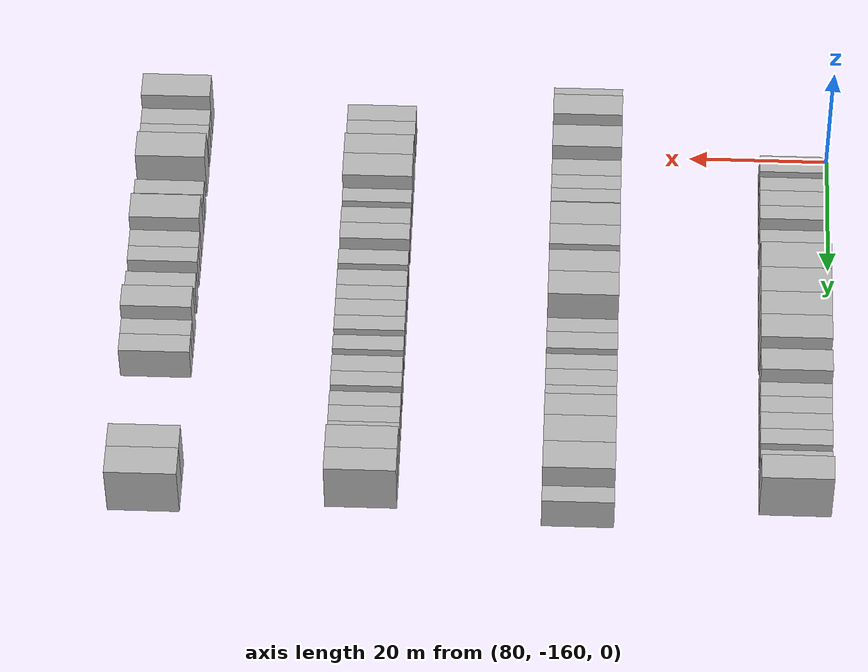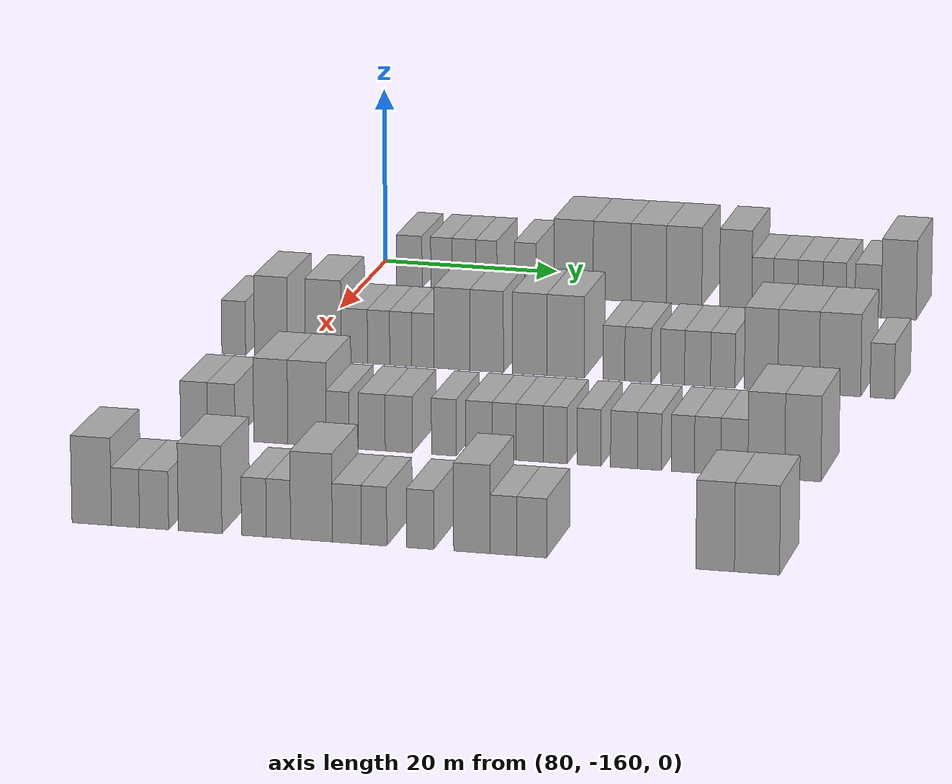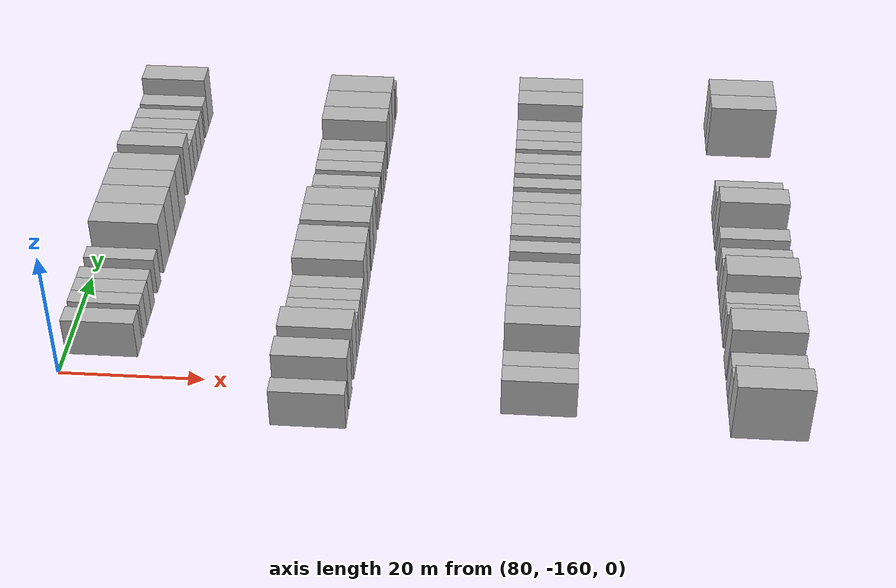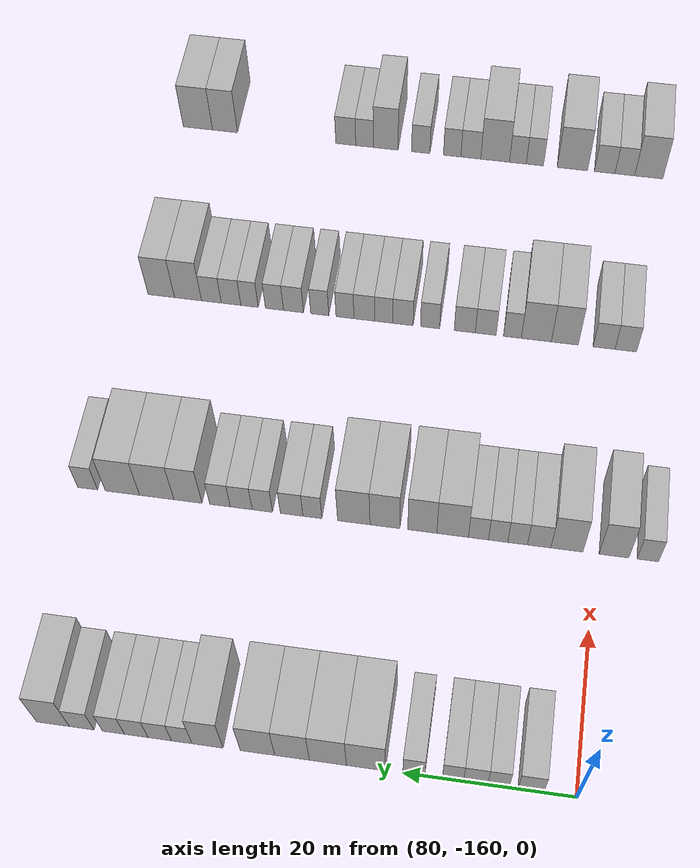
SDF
<sdf version="1.6">
 <world name="default">
  <model name="building_526">
   <static>1</static>
   <pose>85.0000 -154.6946 0 0.000000 0.000000 0.000000</pose>
   <link name="link">
    <pose>0 0 3.00 0 0 0</pose>
    <collision name="collision"><geometry><box><size>10.0000 2.9424 6.0000</size></box></geometry></collision>
    <visual name="visual">
     <cast_shadows>0</cast_shadows>
     <geometry><box><size>10.0000 2.9424 6.0000</size></box></geometry>
     <material>
      <script>
       <uri>model://HANNAS_wall/materials/scripts</uri>
       <uri>model://HANNAS_wall/materials/textures</uri>
       <name>vrc/HANNAS_wall</name>
      </script>
     </material>
    </visual>
   </link>
  </model>
  <model name="building_527">
   <static>1</static>
   <pose>85.0000 -151.0069 0 0.000000 0.000000 0.000000</pose>
   <link name="link">
    <pose>0 0 3.00 0 0 0</pose>
    <collision name="collision"><geometry><box><size>10.0000 2.4330 6.0000</size></box></geometry></collision>
    <visual name="visual">
     <cast_shadows>0</cast_shadows>
     <geometry><box><size>10.0000 2.4330 6.0000</size></box></geometry>
     <material>
      <script>
       <uri>model://HANNAS_wall/materials/scripts</uri>
       <uri>model://HANNAS_wall/materials/textures</uri>
       <name>vrc/HANNAS_wall</name>
      </script>
     </material>
    </visual>
   </link>
  </model>
  <model name="building_528">
   <static>1</static>
   <pose>85.0000 -148.4101 0 0.000000 0.000000 0.000000</pose>
   <link name="link">
    <pose>0 0 3.00 0 0 0</pose>
    <collision name="collision"><geometry><box><size>10.0000 2.7606 6.0000</size></box></geometry></collision>
    <visual name="visual">
     <cast_shadows>0</cast_shadows>
     <geometry><box><size>10.0000 2.7606 6.0000</size></box></geometry>
     <material>
      <script>
       <uri>model://HANNAS_wall/materials/scripts</uri>
       <uri>model://HANNAS_wall/materials/textures</uri>
       <name>vrc/HANNAS_wall</name>
      </script>
     </material>
    </visual>
   </link>
  </model>
  <model name="building_529">
   <static>1</static>
   <pose>85.0000 -145.8207 0 0.000000 0.000000 0.000000</pose>
   <link name="link">
    <pose>0 0 3.00 0 0 0</pose>
    <collision name="collision"><geometry><box><size>10.0000 2.4183 6.0000</size></box></geometry></collision>
    <visual name="visual">
     <cast_shadows>0</cast_shadows>
     <geometry><box><size>10.0000 2.4183 6.0000</size></box></geometry>
     <material>
      <script>
       <uri>model://HANNAS_wall/materials/scripts</uri>
       <uri>model://HANNAS_wall/materials/textures</uri>
       <name>vrc/HANNAS_wall</name>
      </script>
     </material>
    </visual>
   </link>
  </model>
  <model name="building_530">
   <static>1</static>
   <pose>85.0000 -141.3487 0 0.000000 0.000000 0.000000</pose>
   <link name="link">
    <pose>0 0 3.00 0 0 0</pose>
    <collision name="collision"><geometry><box><size>10.0000 2.5257 6.0000</size></box></geometry></collision>
    <visual name="visual">
     <cast_shadows>0</cast_shadows>
     <geometry><box><size>10.0000 2.5257 6.0000</size></box></geometry>
     <material>
      <script>
       <uri>model://HANNAS_wall/materials/scripts</uri>
       <uri>model://HANNAS_wall/materials/textures</uri>
       <name>vrc/HANNAS_wall</name>
      </script>
     </material>
    </visual>
   </link>
  </model>
  <model name="building_531">
   <static>1</static>
   <pose>85.0000 -135.8415 0 0.000000 0.000000 0.000000</pose>
   <link name="link">
    <pose>0 0 4.50 0 0 0</pose>
    <collision name="collision"><geometry><box><size>10.0000 4.4888 9.0000</size></box></geometry></collision>
    <visual name="visual">
     <cast_shadows>0</cast_shadows>
     <geometry><box><size>10.0000 4.4888 9.0000</size></box></geometry>
     <material>
      <script>
       <uri>model://HANNAS_wall/materials/scripts</uri>
       <uri>model://HANNAS_wall/materials/textures</uri>
       <name>vrc/HANNAS_wall</name>
      </script>
     </material>
    </visual>
   </link>
  </model>
  <model name="building_532">
   <static>1</static>
   <pose>85.0000 -131.4497 0 0.000000 0.000000 0.000000</pose>
   <link name="link">
    <pose>0 0 4.50 0 0 0</pose>
    <collision name="collision"><geometry><box><size>10.0000 4.2947 9.0000</size></box></geometry></collision>
    <visual name="visual">
     <cast_shadows>0</cast_shadows>
     <geometry><box><size>10.0000 4.2947 9.0000</size></box></geometry>
     <material>
      <script>
       <uri>model://HANNAS_wall/materials/scripts</uri>
       <uri>model://HANNAS_wall/materials/textures</uri>
       <name>vrc/HANNAS_wall</name>
      </script>
     </material>
    </visual>
   </link>
  </model>
  <model name="building_533">
   <static>1</static>
   <pose>85.0000 -127.2906 0 0.000000 0.000000 0.000000</pose>
   <link name="link">
    <pose>0 0 4.50 0 0 0</pose>
    <collision name="collision"><geometry><box><size>10.0000 4.0234 9.0000</size></box></geometry></collision>
    <visual name="visual">
     <cast_shadows>0</cast_shadows>
     <geometry><box><size>10.0000 4.0234 9.0000</size></box></geometry>
     <material>
      <script>
       <uri>model://HANNAS_wall/materials/scripts</uri>
       <uri>model://HANNAS_wall/materials/textures</uri>
       <name>vrc/HANNAS_wall</name>
      </script>
     </material>
    </visual>
   </link>
  </model>
  <model name="building_534">
   <static>1</static>
   <pose>85.0000 -123.2667 0 0.000000 0.000000 0.000000</pose>
   <link name="link">
    <pose>0 0 4.50 0 0 0</pose>
    <collision name="collision"><geometry><box><size>10.0000 4.0244 9.0000</size></box></geometry></collision>
    <visual name="visual">
     <cast_shadows>0</cast_shadows>
     <geometry><box><size>10.0000 4.0244 9.0000</size></box></geometry>
     <material>
      <script>
       <uri>model://HANNAS_wall/materials/scripts</uri>
       <uri>model://HANNAS_wall/materials/textures</uri>
       <name>vrc/HANNAS_wall</name>
      </script>
     </material>
    </visual>
   </link>
  </model>
  <model name="building_535">
   <static>1</static>
   <pose>85.0000 -117.4367 0 0.000000 0.000000 0.000000</pose>
   <link name="link">
    <pose>0 0 4.50 0 0 0</pose>
    <collision name="collision"><geometry><box><size>10.0000 3.6356 9.0000</size></box></geometry></collision>
    <visual name="visual">
     <cast_shadows>0</cast_shadows>
     <geometry><box><size>10.0000 3.6356 9.0000</size></box></geometry>
     <material>
      <script>
       <uri>model://HANNAS_wall/materials/scripts</uri>
       <uri>model://HANNAS_wall/materials/textures</uri>
       <name>vrc/HANNAS_wall</name>
      </script>
     </material>
    </visual>
   </link>
  </model>
  <model name="building_536">
   <static>1</static>
   <pose>85.0000 -114.4151 0 0.000000 0.000000 0.000000</pose>
   <link name="link">
    <pose>0 0 3.00 0 0 0</pose>
    <collision name="collision"><geometry><box><size>10.0000 2.4075 6.0000</size></box></geometry></collision>
    <visual name="visual">
     <cast_shadows>0</cast_shadows>
     <geometry><box><size>10.0000 2.4075 6.0000</size></box></geometry>
     <material>
      <script>
       <uri>model://HANNAS_wall/materials/scripts</uri>
       <uri>model://HANNAS_wall/materials/textures</uri>
       <name>vrc/HANNAS_wall</name>
      </script>
     </material>
    </visual>
   </link>
  </model>
  <model name="building_537">
   <static>1</static>
   <pose>85.0000 -111.8186 0 0.000000 0.000000 0.000000</pose>
   <link name="link">
    <pose>0 0 3.00 0 0 0</pose>
    <collision name="collision"><geometry><box><size>10.0000 2.7854 6.0000</size></box></geometry></collision>
    <visual name="visual">
     <cast_shadows>0</cast_shadows>
     <geometry><box><size>10.0000 2.7854 6.0000</size></box></geometry>
     <material>
      <script>
       <uri>model://HANNAS_wall/materials/scripts</uri>
       <uri>model://HANNAS_wall/materials/textures</uri>
       <name>vrc/HANNAS_wall</name>
      </script>
     </material>
    </visual>
   </link>
  </model>
  <model name="building_538">
   <static>1</static>
   <pose>85.0000 -109.0393 0 0.000000 0.000000 0.000000</pose>
   <link name="link">
    <pose>0 0 3.00 0 0 0</pose>
    <collision name="collision"><geometry><box><size>10.0000 2.7732 6.0000</size></box></geometry></collision>
    <visual name="visual">
     <cast_shadows>0</cast_shadows>
     <geometry><box><size>10.0000 2.7732 6.0000</size></box></geometry>
     <material>
      <script>
       <uri>model://HANNAS_wall/materials/scripts</uri>
       <uri>model://HANNAS_wall/materials/textures</uri>
       <name>vrc/HANNAS_wall</name>
      </script>
     </material>
    </visual>
   </link>
  </model>
  <model name="building_539">
   <static>1</static>
   <pose>85.0000 -106.3439 0 0.000000 0.000000 0.000000</pose>
   <link name="link">
    <pose>0 0 3.00 0 0 0</pose>
    <collision name="collision"><geometry><box><size>10.0000 2.6176 6.0000</size></box></geometry></collision>
    <visual name="visual">
     <cast_shadows>0</cast_shadows>
     <geometry><box><size>10.0000 2.6176 6.0000</size></box></geometry>
     <material>
      <script>
       <uri>model://HANNAS_wall/materials/scripts</uri>
       <uri>model://HANNAS_wall/materials/textures</uri>
       <name>vrc/HANNAS_wall</name>
      </script>
     </material>
    </visual>
   </link>
  </model>
  <model name="building_540">
   <static>1</static>
   <pose>85.0000 -102.5625 0 0.000000 0.000000 0.000000</pose>
   <link name="link">
    <pose>0 0 3.00 0 0 0</pose>
    <collision name="collision"><geometry><box><size>10.0000 2.9451 6.0000</size></box></geometry></collision>
    <visual name="visual">
     <cast_shadows>0</cast_shadows>
     <geometry><box><size>10.0000 2.9451 6.0000</size></box></geometry>
     <material>
      <script>
       <uri>model://HANNAS_wall/materials/scripts</uri>
       <uri>model://HANNAS_wall/materials/textures</uri>
       <name>vrc/HANNAS_wall</name>
      </script>
     </material>
    </visual>
   </link>
  </model>
  <model name="building_541">
   <static>1</static>
   <pose>85.0000 -99.1441 0 0.000000 0.000000 0.000000</pose>
   <link name="link">
    <pose>0 0 4.50 0 0 0</pose>
    <collision name="collision"><geometry><box><size>10.0000 3.8917 9.0000</size></box></geometry></collision>
    <visual name="visual">
     <cast_shadows>0</cast_shadows>
     <geometry><box><size>10.0000 3.8917 9.0000</size></box></geometry>
     <material>
      <script>
       <uri>model://HANNAS_wall/materials/scripts</uri>
       <uri>model://HANNAS_wall/materials/textures</uri>
       <name>vrc/HANNAS_wall</name>
      </script>
     </material>
    </visual>
   </link>
  </model>
  <model name="building_756">
   <static>1</static>
   <pose>115.0000 -166.5942 0 0.000000 0.000000 0.000000</pose>
   <link name="link">
    <pose>0 0 3.00 0 0 0</pose>
    <collision name="collision"><geometry><box><size>10.0000 2.6651 6.0000</size></box></geometry></collision>
    <visual name="visual">
     <cast_shadows>0</cast_shadows>
     <geometry><box><size>10.0000 2.6651 6.0000</size></box></geometry>
     <material>
      <script>
       <uri>model://HANNAS_wall/materials/scripts</uri>
       <uri>model://HANNAS_wall/materials/textures</uri>
       <name>vrc/HANNAS_wall</name>
      </script>
     </material>
    </visual>
   </link>
  </model>
  <model name="building_757">
   <static>1</static>
   <pose>115.0000 -162.4197 0 0.000000 0.000000 0.000000</pose>
   <link name="link">
    <pose>0 0 4.50 0 0 0</pose>
    <collision name="collision"><geometry><box><size>10.0000 3.6839 9.0000</size></box></geometry></collision>
    <visual name="visual">
     <cast_shadows>0</cast_shadows>
     <geometry><box><size>10.0000 3.6839 9.0000</size></box></geometry>
     <material>
      <script>
       <uri>model://HANNAS_wall/materials/scripts</uri>
       <uri>model://HANNAS_wall/materials/textures</uri>
       <name>vrc/HANNAS_wall</name>
      </script>
     </material>
    </visual>
   </link>
  </model>
  <model name="building_758">
   <static>1</static>
   <pose>115.0000 -156.5883 0 0.000000 0.000000 0.000000</pose>
   <link name="link">
    <pose>0 0 4.50 0 0 0</pose>
    <collision name="collision"><geometry><box><size>10.0000 3.9788 9.0000</size></box></geometry></collision>
    <visual name="visual">
     <cast_shadows>0</cast_shadows>
     <geometry><box><size>10.0000 3.9788 9.0000</size></box></geometry>
     <material>
      <script>
       <uri>model://HANNAS_wall/materials/scripts</uri>
       <uri>model://HANNAS_wall/materials/textures</uri>
       <name>vrc/HANNAS_wall</name>
      </script>
     </material>
    </visual>
   </link>
  </model>
  <model name="building_759">
   <static>1</static>
   <pose>115.0000 -153.1398 0 0.000000 0.000000 0.000000</pose>
   <link name="link">
    <pose>0 0 3.00 0 0 0</pose>
    <collision name="collision"><geometry><box><size>10.0000 2.9182 6.0000</size></box></geometry></collision>
    <visual name="visual">
     <cast_shadows>0</cast_shadows>
     <geometry><box><size>10.0000 2.9182 6.0000</size></box></geometry>
     <material>
      <script>
       <uri>model://HANNAS_wall/materials/scripts</uri>
       <uri>model://HANNAS_wall/materials/textures</uri>
       <name>vrc/HANNAS_wall</name>
      </script>
     </material>
    </visual>
   </link>
  </model>
  <model name="building_760">
   <static>1</static>
   <pose>115.0000 -150.4507 0 0.000000 0.000000 0.000000</pose>
   <link name="link">
    <pose>0 0 3.00 0 0 0</pose>
    <collision name="collision"><geometry><box><size>10.0000 2.4600 6.0000</size></box></geometry></collision>
    <visual name="visual">
     <cast_shadows>0</cast_shadows>
     <geometry><box><size>10.0000 2.4600 6.0000</size></box></geometry>
     <material>
      <script>
       <uri>model://HANNAS_wall/materials/scripts</uri>
       <uri>model://HANNAS_wall/materials/textures</uri>
       <name>vrc/HANNAS_wall</name>
      </script>
     </material>
    </visual>
   </link>
  </model>
  <model name="building_761">
   <static>1</static>
   <pose>115.0000 -148.0131 0 0.000000 0.000000 0.000000</pose>
   <link name="link">
    <pose>0 0 3.00 0 0 0</pose>
    <collision name="collision"><geometry><box><size>10.0000 2.4152 6.0000</size></box></geometry></collision>
    <visual name="visual">
     <cast_shadows>0</cast_shadows>
     <geometry><box><size>10.0000 2.4152 6.0000</size></box></geometry>
     <material>
      <script>
       <uri>model://HANNAS_wall/materials/scripts</uri>
       <uri>model://HANNAS_wall/materials/textures</uri>
       <name>vrc/HANNAS_wall</name>
      </script>
     </material>
    </visual>
   </link>
  </model>
  <model name="building_762">
   <static>1</static>
   <pose>115.0000 -145.5561 0 0.000000 0.000000 0.000000</pose>
   <link name="link">
    <pose>0 0 3.00 0 0 0</pose>
    <collision name="collision"><geometry><box><size>10.0000 2.4988 6.0000</size></box></geometry></collision>
    <visual name="visual">
     <cast_shadows>0</cast_shadows>
     <geometry><box><size>10.0000 2.4988 6.0000</size></box></geometry>
     <material>
      <script>
       <uri>model://HANNAS_wall/materials/scripts</uri>
       <uri>model://HANNAS_wall/materials/textures</uri>
       <name>vrc/HANNAS_wall</name>
      </script>
     </material>
    </visual>
   </link>
  </model>
  <model name="building_763">
   <static>1</static>
   <pose>115.0000 -142.3222 0 0.000000 0.000000 0.000000</pose>
   <link name="link">
    <pose>0 0 4.50 0 0 0</pose>
    <collision name="collision"><geometry><box><size>10.0000 3.9689 9.0000</size></box></geometry></collision>
    <visual name="visual">
     <cast_shadows>0</cast_shadows>
     <geometry><box><size>10.0000 3.9689 9.0000</size></box></geometry>
     <material>
      <script>
       <uri>model://HANNAS_wall/materials/scripts</uri>
       <uri>model://HANNAS_wall/materials/textures</uri>
       <name>vrc/HANNAS_wall</name>
      </script>
     </material>
    </visual>
   </link>
  </model>
  <model name="building_764">
   <static>1</static>
   <pose>115.0000 -138.5128 0 0.000000 0.000000 0.000000</pose>
   <link name="link">
    <pose>0 0 4.50 0 0 0</pose>
    <collision name="collision"><geometry><box><size>10.0000 3.6499 9.0000</size></box></geometry></collision>
    <visual name="visual">
     <cast_shadows>0</cast_shadows>
     <geometry><box><size>10.0000 3.6499 9.0000</size></box></geometry>
     <material>
      <script>
       <uri>model://HANNAS_wall/materials/scripts</uri>
       <uri>model://HANNAS_wall/materials/textures</uri>
       <name>vrc/HANNAS_wall</name>
      </script>
     </material>
    </visual>
   </link>
  </model>
  <model name="building_765">
   <static>1</static>
   <pose>115.0000 -133.7959 0 0.000000 0.000000 0.000000</pose>
   <link name="link">
    <pose>0 0 4.50 0 0 0</pose>
    <collision name="collision"><geometry><box><size>10.0000 3.7840 9.0000</size></box></geometry></collision>
    <visual name="visual">
     <cast_shadows>0</cast_shadows>
     <geometry><box><size>10.0000 3.7840 9.0000</size></box></geometry>
     <material>
      <script>
       <uri>model://HANNAS_wall/materials/scripts</uri>
       <uri>model://HANNAS_wall/materials/textures</uri>
       <name>vrc/HANNAS_wall</name>
      </script>
     </material>
    </visual>
   </link>
  </model>
  <model name="building_766">
   <static>1</static>
   <pose>115.0000 -129.8573 0 0.000000 0.000000 0.000000</pose>
   <link name="link">
    <pose>0 0 4.50 0 0 0</pose>
    <collision name="collision"><geometry><box><size>10.0000 4.0932 9.0000</size></box></geometry></collision>
    <visual name="visual">
     <cast_shadows>0</cast_shadows>
     <geometry><box><size>10.0000 4.0932 9.0000</size></box></geometry>
     <material>
      <script>
       <uri>model://HANNAS_wall/materials/scripts</uri>
       <uri>model://HANNAS_wall/materials/textures</uri>
       <name>vrc/HANNAS_wall</name>
      </script>
     </material>
    </visual>
   </link>
  </model>
  <model name="building_767">
   <static>1</static>
   <pose>115.0000 -124.6095 0 0.000000 0.000000 0.000000</pose>
   <link name="link">
    <pose>0 0 3.00 0 0 0</pose>
    <collision name="collision"><geometry><box><size>10.0000 2.4023 6.0000</size></box></geometry></collision>
    <visual name="visual">
     <cast_shadows>0</cast_shadows>
     <geometry><box><size>10.0000 2.4023 6.0000</size></box></geometry>
     <material>
      <script>
       <uri>model://HANNAS_wall/materials/scripts</uri>
       <uri>model://HANNAS_wall/materials/textures</uri>
       <name>vrc/HANNAS_wall</name>
      </script>
     </material>
    </visual>
   </link>
  </model>
  <model name="building_768">
   <static>1</static>
   <pose>115.0000 -121.9651 0 0.000000 0.000000 0.000000</pose>
   <link name="link">
    <pose>0 0 3.00 0 0 0</pose>
    <collision name="collision"><geometry><box><size>10.0000 2.8866 6.0000</size></box></geometry></collision>
    <visual name="visual">
     <cast_shadows>0</cast_shadows>
     <geometry><box><size>10.0000 2.8866 6.0000</size></box></geometry>
     <material>
      <script>
       <uri>model://HANNAS_wall/materials/scripts</uri>
       <uri>model://HANNAS_wall/materials/textures</uri>
       <name>vrc/HANNAS_wall</name>
      </script>
     </material>
    </visual>
   </link>
  </model>
  <model name="building_769">
   <static>1</static>
   <pose>115.0000 -118.2222 0 0.000000 0.000000 0.000000</pose>
   <link name="link">
    <pose>0 0 3.00 0 0 0</pose>
    <collision name="collision"><geometry><box><size>10.0000 2.5993 6.0000</size></box></geometry></collision>
    <visual name="visual">
     <cast_shadows>0</cast_shadows>
     <geometry><box><size>10.0000 2.5993 6.0000</size></box></geometry>
     <material>
      <script>
       <uri>model://HANNAS_wall/materials/scripts</uri>
       <uri>model://HANNAS_wall/materials/textures</uri>
       <name>vrc/HANNAS_wall</name>
      </script>
     </material>
    </visual>
   </link>
  </model>
  <model name="building_770">
   <static>1</static>
   <pose>115.0000 -115.5178 0 0.000000 0.000000 0.000000</pose>
   <link name="link">
    <pose>0 0 3.00 0 0 0</pose>
    <collision name="collision"><geometry><box><size>10.0000 2.8096 6.0000</size></box></geometry></collision>
    <visual name="visual">
     <cast_shadows>0</cast_shadows>
     <geometry><box><size>10.0000 2.8096 6.0000</size></box></geometry>
     <material>
      <script>
       <uri>model://HANNAS_wall/materials/scripts</uri>
       <uri>model://HANNAS_wall/materials/textures</uri>
       <name>vrc/HANNAS_wall</name>
      </script>
     </material>
    </visual>
   </link>
  </model>
  <model name="building_771">
   <static>1</static>
   <pose>115.0000 -112.7918 0 0.000000 0.000000 0.000000</pose>
   <link name="link">
    <pose>0 0 3.00 0 0 0</pose>
    <collision name="collision"><geometry><box><size>10.0000 2.6424 6.0000</size></box></geometry></collision>
    <visual name="visual">
     <cast_shadows>0</cast_shadows>
     <geometry><box><size>10.0000 2.6424 6.0000</size></box></geometry>
     <material>
      <script>
       <uri>model://HANNAS_wall/materials/scripts</uri>
       <uri>model://HANNAS_wall/materials/textures</uri>
       <name>vrc/HANNAS_wall</name>
      </script>
     </material>
    </visual>
   </link>
  </model>
  <model name="building_772">
   <static>1</static>
   <pose>115.0000 -108.6575 0 0.000000 0.000000 0.000000</pose>
   <link name="link">
    <pose>0 0 4.50 0 0 0</pose>
    <collision name="collision"><geometry><box><size>10.0000 3.6263 9.0000</size></box></geometry></collision>
    <visual name="visual">
     <cast_shadows>0</cast_shadows>
     <geometry><box><size>10.0000 3.6263 9.0000</size></box></geometry>
     <material>
      <script>
       <uri>model://HANNAS_wall/materials/scripts</uri>
       <uri>model://HANNAS_wall/materials/textures</uri>
       <name>vrc/HANNAS_wall</name>
      </script>
     </material>
    </visual>
   </link>
  </model>
  <model name="building_773">
   <static>1</static>
   <pose>115.0000 -104.6255 0 0.000000 0.000000 0.000000</pose>
   <link name="link">
    <pose>0 0 4.50 0 0 0</pose>
    <collision name="collision"><geometry><box><size>10.0000 4.4377 9.0000</size></box></geometry></collision>
    <visual name="visual">
     <cast_shadows>0</cast_shadows>
     <geometry><box><size>10.0000 4.4377 9.0000</size></box></geometry>
     <material>
      <script>
       <uri>model://HANNAS_wall/materials/scripts</uri>
       <uri>model://HANNAS_wall/materials/textures</uri>
       <name>vrc/HANNAS_wall</name>
      </script>
     </material>
    </visual>
   </link>
  </model>
  <model name="building_774">
   <static>1</static>
   <pose>115.0000 -100.1781 0 0.000000 0.000000 0.000000</pose>
   <link name="link">
    <pose>0 0 4.50 0 0 0</pose>
    <collision name="collision"><geometry><box><size>10.0000 4.4570 9.0000</size></box></geometry></collision>
    <visual name="visual">
     <cast_shadows>0</cast_shadows>
     <geometry><box><size>10.0000 4.4570 9.0000</size></box></geometry>
     <material>
      <script>
       <uri>model://HANNAS_wall/materials/scripts</uri>
       <uri>model://HANNAS_wall/materials/textures</uri>
       <name>vrc/HANNAS_wall</name>
      </script>
     </material>
    </visual>
   </link>
  </model>
  <model name="building_775">
   <static>1</static>
   <pose>115.0000 -95.6564 0 0.000000 0.000000 0.000000</pose>
   <link name="link">
    <pose>0 0 3.00 0 0 0</pose>
    <collision name="collision"><geometry><box><size>10.0000 2.5863 6.0000</size></box></geometry></collision>
    <visual name="visual">
     <cast_shadows>0</cast_shadows>
     <geometry><box><size>10.0000 2.5863 6.0000</size></box></geometry>
     <material>
      <script>
       <uri>model://HANNAS_wall/materials/scripts</uri>
       <uri>model://HANNAS_wall/materials/textures</uri>
       <name>vrc/HANNAS_wall</name>
      </script>
     </material>
    </visual>
   </link>
  </model>
  <model name="building_989">
   <static>1</static>
   <pose>145.0000 -162.3077 0 0.000000 0.000000 0.000000</pose>
   <link name="link">
    <pose>0 0 3.00 0 0 0</pose>
    <collision name="collision"><geometry><box><size>10.0000 2.8943 6.0000</size></box></geometry></collision>
    <visual name="visual">
     <cast_shadows>0</cast_shadows>
     <geometry><box><size>10.0000 2.8943 6.0000</size></box></geometry>
     <material>
      <script>
       <uri>model://HANNAS_wall/materials/scripts</uri>
       <uri>model://HANNAS_wall/materials/textures</uri>
       <name>vrc/HANNAS_wall</name>
      </script>
     </material>
    </visual>
   </link>
  </model>
  <model name="building_990">
   <static>1</static>
   <pose>145.0000 -159.3854 0 0.000000 0.000000 0.000000</pose>
   <link name="link">
    <pose>0 0 3.00 0 0 0</pose>
    <collision name="collision"><geometry><box><size>10.0000 2.9504 6.0000</size></box></geometry></collision>
    <visual name="visual">
     <cast_shadows>0</cast_shadows>
     <geometry><box><size>10.0000 2.9504 6.0000</size></box></geometry>
     <material>
      <script>
       <uri>model://HANNAS_wall/materials/scripts</uri>
       <uri>model://HANNAS_wall/materials/textures</uri>
       <name>vrc/HANNAS_wall</name>
      </script>
     </material>
    </visual>
   </link>
  </model>
  <model name="building_991">
   <static>1</static>
   <pose>145.0000 -154.0916 0 0.000000 0.000000 0.000000</pose>
   <link name="link">
    <pose>0 0 4.50 0 0 0</pose>
    <collision name="collision"><geometry><box><size>10.0000 3.6371 9.0000</size></box></geometry></collision>
    <visual name="visual">
     <cast_shadows>0</cast_shadows>
     <geometry><box><size>10.0000 3.6371 9.0000</size></box></geometry>
     <material>
      <script>
       <uri>model://HANNAS_wall/materials/scripts</uri>
       <uri>model://HANNAS_wall/materials/textures</uri>
       <name>vrc/HANNAS_wall</name>
      </script>
     </material>
    </visual>
   </link>
  </model>
  <model name="building_992">
   <static>1</static>
   <pose>145.0000 -150.2352 0 0.000000 0.000000 0.000000</pose>
   <link name="link">
    <pose>0 0 4.50 0 0 0</pose>
    <collision name="collision"><geometry><box><size>10.0000 4.0757 9.0000</size></box></geometry></collision>
    <visual name="visual">
     <cast_shadows>0</cast_shadows>
     <geometry><box><size>10.0000 4.0757 9.0000</size></box></geometry>
     <material>
      <script>
       <uri>model://HANNAS_wall/materials/scripts</uri>
       <uri>model://HANNAS_wall/materials/textures</uri>
       <name>vrc/HANNAS_wall</name>
      </script>
     </material>
    </visual>
   </link>
  </model>
  <model name="building_993">
   <static>1</static>
   <pose>145.0000 -146.9902 0 0.000000 0.000000 0.000000</pose>
   <link name="link">
    <pose>0 0 3.00 0 0 0</pose>
    <collision name="collision"><geometry><box><size>10.0000 2.4142 6.0000</size></box></geometry></collision>
    <visual name="visual">
     <cast_shadows>0</cast_shadows>
     <geometry><box><size>10.0000 2.4142 6.0000</size></box></geometry>
     <material>
      <script>
       <uri>model://HANNAS_wall/materials/scripts</uri>
       <uri>model://HANNAS_wall/materials/textures</uri>
       <name>vrc/HANNAS_wall</name>
      </script>
     </material>
    </visual>
   </link>
  </model>
  <model name="building_994">
   <static>1</static>
   <pose>145.0000 -143.3647 0 0.000000 0.000000 0.000000</pose>
   <link name="link">
    <pose>0 0 3.00 0 0 0</pose>
    <collision name="collision"><geometry><box><size>10.0000 2.8368 6.0000</size></box></geometry></collision>
    <visual name="visual">
     <cast_shadows>0</cast_shadows>
     <geometry><box><size>10.0000 2.8368 6.0000</size></box></geometry>
     <material>
      <script>
       <uri>model://HANNAS_wall/materials/scripts</uri>
       <uri>model://HANNAS_wall/materials/textures</uri>
       <name>vrc/HANNAS_wall</name>
      </script>
     </material>
    </visual>
   </link>
  </model>
  <model name="building_995">
   <static>1</static>
   <pose>145.0000 -140.5082 0 0.000000 0.000000 0.000000</pose>
   <link name="link">
    <pose>0 0 3.00 0 0 0</pose>
    <collision name="collision"><geometry><box><size>10.0000 2.8763 6.0000</size></box></geometry></collision>
    <visual name="visual">
     <cast_shadows>0</cast_shadows>
     <geometry><box><size>10.0000 2.8763 6.0000</size></box></geometry>
     <material>
      <script>
       <uri>model://HANNAS_wall/materials/scripts</uri>
       <uri>model://HANNAS_wall/materials/textures</uri>
       <name>vrc/HANNAS_wall</name>
      </script>
     </material>
    </visual>
   </link>
  </model>
  <model name="building_996">
   <static>1</static>
   <pose>145.0000 -135.7601 0 0.000000 0.000000 0.000000</pose>
   <link name="link">
    <pose>0 0 3.00 0 0 0</pose>
    <collision name="collision"><geometry><box><size>10.0000 2.6199 6.0000</size></box></geometry></collision>
    <visual name="visual">
     <cast_shadows>0</cast_shadows>
     <geometry><box><size>10.0000 2.6199 6.0000</size></box></geometry>
     <material>
      <script>
       <uri>model://HANNAS_wall/materials/scripts</uri>
       <uri>model://HANNAS_wall/materials/textures</uri>
       <name>vrc/HANNAS_wall</name>
      </script>
     </material>
    </visual>
   </link>
  </model>
  <model name="building_997">
   <static>1</static>
   <pose>145.0000 -132.0538 0 0.000000 0.000000 0.000000</pose>
   <link name="link">
    <pose>0 0 3.00 0 0 0</pose>
    <collision name="collision"><geometry><box><size>10.0000 2.7929 6.0000</size></box></geometry></collision>
    <visual name="visual">
     <cast_shadows>0</cast_shadows>
     <geometry><box><size>10.0000 2.7929 6.0000</size></box></geometry>
     <material>
      <script>
       <uri>model://HANNAS_wall/materials/scripts</uri>
       <uri>model://HANNAS_wall/materials/textures</uri>
       <name>vrc/HANNAS_wall</name>
      </script>
     </material>
    </visual>
   </link>
  </model>
  <model name="building_998">
   <static>1</static>
   <pose>145.0000 -129.4164 0 0.000000 0.000000 0.000000</pose>
   <link name="link">
    <pose>0 0 3.00 0 0 0</pose>
    <collision name="collision"><geometry><box><size>10.0000 2.4818 6.0000</size></box></geometry></collision>
    <visual name="visual">
     <cast_shadows>0</cast_shadows>
     <geometry><box><size>10.0000 2.4818 6.0000</size></box></geometry>
     <material>
      <script>
       <uri>model://HANNAS_wall/materials/scripts</uri>
       <uri>model://HANNAS_wall/materials/textures</uri>
       <name>vrc/HANNAS_wall</name>
      </script>
     </material>
    </visual>
   </link>
  </model>
  <model name="building_999">
   <static>1</static>
   <pose>145.0000 -126.7420 0 0.000000 0.000000 0.000000</pose>
   <link name="link">
    <pose>0 0 3.00 0 0 0</pose>
    <collision name="collision"><geometry><box><size>10.0000 2.8670 6.0000</size></box></geometry></collision>
    <visual name="visual">
     <cast_shadows>0</cast_shadows>
     <geometry><box><size>10.0000 2.8670 6.0000</size></box></geometry>
     <material>
      <script>
       <uri>model://HANNAS_wall/materials/scripts</uri>
       <uri>model://HANNAS_wall/materials/textures</uri>
       <name>vrc/HANNAS_wall</name>
      </script>
     </material>
    </visual>
   </link>
  </model>
  <model name="building_1000">
   <static>1</static>
   <pose>145.0000 -124.0667 0 0.000000 0.000000 0.000000</pose>
   <link name="link">
    <pose>0 0 3.00 0 0 0</pose>
    <collision name="collision"><geometry><box><size>10.0000 2.4837 6.0000</size></box></geometry></collision>
    <visual name="visual">
     <cast_shadows>0</cast_shadows>
     <geometry><box><size>10.0000 2.4837 6.0000</size></box></geometry>
     <material>
      <script>
       <uri>model://HANNAS_wall/materials/scripts</uri>
       <uri>model://HANNAS_wall/materials/textures</uri>
       <name>vrc/HANNAS_wall</name>
      </script>
     </material>
    </visual>
   </link>
  </model>
  <model name="building_1001">
   <static>1</static>
   <pose>145.0000 -120.5698 0 0.000000 0.000000 0.000000</pose>
   <link name="link">
    <pose>0 0 3.00 0 0 0</pose>
    <collision name="collision"><geometry><box><size>10.0000 2.5101 6.0000</size></box></geometry></collision>
    <visual name="visual">
     <cast_shadows>0</cast_shadows>
     <geometry><box><size>10.0000 2.5101 6.0000</size></box></geometry>
     <material>
      <script>
       <uri>model://HANNAS_wall/materials/scripts</uri>
       <uri>model://HANNAS_wall/materials/textures</uri>
       <name>vrc/HANNAS_wall</name>
      </script>
     </material>
    </visual>
   </link>
  </model>
  <model name="building_1002">
   <static>1</static>
   <pose>145.0000 -116.9222 0 0.000000 0.000000 0.000000</pose>
   <link name="link">
    <pose>0 0 3.00 0 0 0</pose>
    <collision name="collision"><geometry><box><size>10.0000 2.7850 6.0000</size></box></geometry></collision>
    <visual name="visual">
     <cast_shadows>0</cast_shadows>
     <geometry><box><size>10.0000 2.7850 6.0000</size></box></geometry>
     <material>
      <script>
       <uri>model://HANNAS_wall/materials/scripts</uri>
       <uri>model://HANNAS_wall/materials/textures</uri>
       <name>vrc/HANNAS_wall</name>
      </script>
     </material>
    </visual>
   </link>
  </model>
  <model name="building_1003">
   <static>1</static>
   <pose>145.0000 -114.2777 0 0.000000 0.000000 0.000000</pose>
   <link name="link">
    <pose>0 0 3.00 0 0 0</pose>
    <collision name="collision"><geometry><box><size>10.0000 2.5041 6.0000</size></box></geometry></collision>
    <visual name="visual">
     <cast_shadows>0</cast_shadows>
     <geometry><box><size>10.0000 2.5041 6.0000</size></box></geometry>
     <material>
      <script>
       <uri>model://HANNAS_wall/materials/scripts</uri>
       <uri>model://HANNAS_wall/materials/textures</uri>
       <name>vrc/HANNAS_wall</name>
      </script>
     </material>
    </visual>
   </link>
  </model>
  <model name="building_1004">
   <static>1</static>
   <pose>145.0000 -110.8161 0 0.000000 0.000000 0.000000</pose>
   <link name="link">
    <pose>0 0 3.00 0 0 0</pose>
    <collision name="collision"><geometry><box><size>10.0000 2.4190 6.0000</size></box></geometry></collision>
    <visual name="visual">
     <cast_shadows>0</cast_shadows>
     <geometry><box><size>10.0000 2.4190 6.0000</size></box></geometry>
     <material>
      <script>
       <uri>model://HANNAS_wall/materials/scripts</uri>
       <uri>model://HANNAS_wall/materials/textures</uri>
       <name>vrc/HANNAS_wall</name>
      </script>
     </material>
    </visual>
   </link>
  </model>
  <model name="building_1005">
   <static>1</static>
   <pose>145.0000 -108.2437 0 0.000000 0.000000 0.000000</pose>
   <link name="link">
    <pose>0 0 3.00 0 0 0</pose>
    <collision name="collision"><geometry><box><size>10.0000 2.7259 6.0000</size></box></geometry></collision>
    <visual name="visual">
     <cast_shadows>0</cast_shadows>
     <geometry><box><size>10.0000 2.7259 6.0000</size></box></geometry>
     <material>
      <script>
       <uri>model://HANNAS_wall/materials/scripts</uri>
       <uri>model://HANNAS_wall/materials/textures</uri>
       <name>vrc/HANNAS_wall</name>
      </script>
     </material>
    </visual>
   </link>
  </model>
  <model name="building_1006">
   <static>1</static>
   <pose>145.0000 -105.4901 0 0.000000 0.000000 0.000000</pose>
   <link name="link">
    <pose>0 0 3.00 0 0 0</pose>
    <collision name="collision"><geometry><box><size>10.0000 2.7812 6.0000</size></box></geometry></collision>
    <visual name="visual">
     <cast_shadows>0</cast_shadows>
     <geometry><box><size>10.0000 2.7812 6.0000</size></box></geometry>
     <material>
      <script>
       <uri>model://HANNAS_wall/materials/scripts</uri>
       <uri>model://HANNAS_wall/materials/textures</uri>
       <name>vrc/HANNAS_wall</name>
      </script>
     </material>
    </visual>
   </link>
  </model>
  <model name="building_1007">
   <static>1</static>
   <pose>145.0000 -102.2036 0 0.000000 0.000000 0.000000</pose>
   <link name="link">
    <pose>0 0 4.50 0 0 0</pose>
    <collision name="collision"><geometry><box><size>10.0000 3.7918 9.0000</size></box></geometry></collision>
    <visual name="visual">
     <cast_shadows>0</cast_shadows>
     <geometry><box><size>10.0000 3.7918 9.0000</size></box></geometry>
     <material>
      <script>
       <uri>model://HANNAS_wall/materials/scripts</uri>
       <uri>model://HANNAS_wall/materials/textures</uri>
       <name>vrc/HANNAS_wall</name>
      </script>
     </material>
    </visual>
   </link>
  </model>
  <model name="building_1008">
   <static>1</static>
   <pose>145.0000 -98.4480 0 0.000000 0.000000 0.000000</pose>
   <link name="link">
    <pose>0 0 4.50 0 0 0</pose>
    <collision name="collision"><geometry><box><size>10.0000 3.7194 9.0000</size></box></geometry></collision>
    <visual name="visual">
     <cast_shadows>0</cast_shadows>
     <geometry><box><size>10.0000 3.7194 9.0000</size></box></geometry>
     <material>
      <script>
       <uri>model://HANNAS_wall/materials/scripts</uri>
       <uri>model://HANNAS_wall/materials/textures</uri>
       <name>vrc/HANNAS_wall</name>
      </script>
     </material>
    </visual>
   </link>
  </model>
  <model name="building_1212">
   <static>1</static>
   <pose>175.0000 -164.0784 0 0.000000 0.000000 0.000000</pose>
   <link name="link">
    <pose>0 0 4.50 0 0 0</pose>
    <collision name="collision"><geometry><box><size>10.0000 4.0718 9.0000</size></box></geometry></collision>
    <visual name="visual">
     <cast_shadows>0</cast_shadows>
     <geometry><box><size>10.0000 4.0718 9.0000</size></box></geometry>
     <material>
      <script>
       <uri>model://HANNAS_wall/materials/scripts</uri>
       <uri>model://HANNAS_wall/materials/textures</uri>
       <name>vrc/HANNAS_wall</name>
      </script>
     </material>
    </visual>
   </link>
  </model>
  <model name="building_1213">
   <static>1</static>
   <pose>175.0000 -160.6068 0 0.000000 0.000000 0.000000</pose>
   <link name="link">
    <pose>0 0 3.00 0 0 0</pose>
    <collision name="collision"><geometry><box><size>10.0000 2.8714 6.0000</size></box></geometry></collision>
    <visual name="visual">
     <cast_shadows>0</cast_shadows>
     <geometry><box><size>10.0000 2.8714 6.0000</size></box></geometry>
     <material>
      <script>
       <uri>model://HANNAS_wall/materials/scripts</uri>
       <uri>model://HANNAS_wall/materials/textures</uri>
       <name>vrc/HANNAS_wall</name>
      </script>
     </material>
    </visual>
   </link>
  </model>
  <model name="building_1214">
   <static>1</static>
   <pose>175.0000 -157.6771 0 0.000000 0.000000 0.000000</pose>
   <link name="link">
    <pose>0 0 3.00 0 0 0</pose>
    <collision name="collision"><geometry><box><size>10.0000 2.9880 6.0000</size></box></geometry></collision>
    <visual name="visual">
     <cast_shadows>0</cast_shadows>
     <geometry><box><size>10.0000 2.9880 6.0000</size></box></geometry>
     <material>
      <script>
       <uri>model://HANNAS_wall/materials/scripts</uri>
       <uri>model://HANNAS_wall/materials/textures</uri>
       <name>vrc/HANNAS_wall</name>
      </script>
     </material>
    </visual>
   </link>
  </model>
  <model name="building_1215">
   <static>1</static>
   <pose>175.0000 -152.9583 0 0.000000 0.000000 0.000000</pose>
   <link name="link">
    <pose>0 0 4.50 0 0 0</pose>
    <collision name="collision"><geometry><box><size>10.0000 4.4495 9.0000</size></box></geometry></collision>
    <visual name="visual">
     <cast_shadows>0</cast_shadows>
     <geometry><box><size>10.0000 4.4495 9.0000</size></box></geometry>
     <material>
      <script>
       <uri>model://HANNAS_wall/materials/scripts</uri>
       <uri>model://HANNAS_wall/materials/textures</uri>
       <name>vrc/HANNAS_wall</name>
      </script>
     </material>
    </visual>
   </link>
  </model>
  <model name="building_1216">
   <static>1</static>
   <pose>175.0000 -147.4750 0 0.000000 0.000000 0.000000</pose>
   <link name="link">
    <pose>0 0 3.00 0 0 0</pose>
    <collision name="collision"><geometry><box><size>10.0000 2.5171 6.0000</size></box></geometry></collision>
    <visual name="visual">
     <cast_shadows>0</cast_shadows>
     <geometry><box><size>10.0000 2.5171 6.0000</size></box></geometry>
     <material>
      <script>
       <uri>model://HANNAS_wall/materials/scripts</uri>
       <uri>model://HANNAS_wall/materials/textures</uri>
       <name>vrc/HANNAS_wall</name>
      </script>
     </material>
    </visual>
   </link>
  </model>
  <model name="building_1217">
   <static>1</static>
   <pose>175.0000 -144.9832 0 0.000000 0.000000 0.000000</pose>
   <link name="link">
    <pose>0 0 3.00 0 0 0</pose>
    <collision name="collision"><geometry><box><size>10.0000 2.4665 6.0000</size></box></geometry></collision>
    <visual name="visual">
     <cast_shadows>0</cast_shadows>
     <geometry><box><size>10.0000 2.4665 6.0000</size></box></geometry>
     <material>
      <script>
       <uri>model://HANNAS_wall/materials/scripts</uri>
       <uri>model://HANNAS_wall/materials/textures</uri>
       <name>vrc/HANNAS_wall</name>
      </script>
     </material>
    </visual>
   </link>
  </model>
  <model name="building_1218">
   <static>1</static>
   <pose>175.0000 -141.6377 0 0.000000 0.000000 0.000000</pose>
   <link name="link">
    <pose>0 0 4.50 0 0 0</pose>
    <collision name="collision"><geometry><box><size>10.0000 4.2245 9.0000</size></box></geometry></collision>
    <visual name="visual">
     <cast_shadows>0</cast_shadows>
     <geometry><box><size>10.0000 4.2245 9.0000</size></box></geometry>
     <material>
      <script>
       <uri>model://HANNAS_wall/materials/scripts</uri>
       <uri>model://HANNAS_wall/materials/textures</uri>
       <name>vrc/HANNAS_wall</name>
      </script>
     </material>
    </visual>
   </link>
  </model>
  <model name="building_1219">
   <static>1</static>
   <pose>175.0000 -138.0662 0 0.000000 0.000000 0.000000</pose>
   <link name="link">
    <pose>0 0 3.00 0 0 0</pose>
    <collision name="collision"><geometry><box><size>10.0000 2.9185 6.0000</size></box></geometry></collision>
    <visual name="visual">
     <cast_shadows>0</cast_shadows>
     <geometry><box><size>10.0000 2.9185 6.0000</size></box></geometry>
     <material>
      <script>
       <uri>model://HANNAS_wall/materials/scripts</uri>
       <uri>model://HANNAS_wall/materials/textures</uri>
       <name>vrc/HANNAS_wall</name>
      </script>
     </material>
    </visual>
   </link>
  </model>
  <model name="building_1220">
   <static>1</static>
   <pose>175.0000 -135.3130 0 0.000000 0.000000 0.000000</pose>
   <link name="link">
    <pose>0 0 3.00 0 0 0</pose>
    <collision name="collision"><geometry><box><size>10.0000 2.5878 6.0000</size></box></geometry></collision>
    <visual name="visual">
     <cast_shadows>0</cast_shadows>
     <geometry><box><size>10.0000 2.5878 6.0000</size></box></geometry>
     <material>
      <script>
       <uri>model://HANNAS_wall/materials/scripts</uri>
       <uri>model://HANNAS_wall/materials/textures</uri>
       <name>vrc/HANNAS_wall</name>
      </script>
     </material>
    </visual>
   </link>
  </model>
  <model name="building_1221">
   <static>1</static>
   <pose>175.0000 -130.6617 0 0.000000 0.000000 0.000000</pose>
   <link name="link">
    <pose>0 0 3.00 0 0 0</pose>
    <collision name="collision"><geometry><box><size>10.0000 2.7149 6.0000</size></box></geometry></collision>
    <visual name="visual">
     <cast_shadows>0</cast_shadows>
     <geometry><box><size>10.0000 2.7149 6.0000</size></box></geometry>
     <material>
      <script>
       <uri>model://HANNAS_wall/materials/scripts</uri>
       <uri>model://HANNAS_wall/materials/textures</uri>
       <name>vrc/HANNAS_wall</name>
      </script>
     </material>
    </visual>
   </link>
  </model>
  <model name="building_1222">
   <static>1</static>
   <pose>175.0000 -125.4768 0 0.000000 0.000000 0.000000</pose>
   <link name="link">
    <pose>0 0 4.50 0 0 0</pose>
    <collision name="collision"><geometry><box><size>10.0000 3.6549 9.0000</size></box></geometry></collision>
    <visual name="visual">
     <cast_shadows>0</cast_shadows>
     <geometry><box><size>10.0000 3.6549 9.0000</size></box></geometry>
     <material>
      <script>
       <uri>model://HANNAS_wall/materials/scripts</uri>
       <uri>model://HANNAS_wall/materials/textures</uri>
       <name>vrc/HANNAS_wall</name>
      </script>
     </material>
    </visual>
   </link>
  </model>
  <model name="building_1223">
   <static>1</static>
   <pose>175.0000 -122.3165 0 0.000000 0.000000 0.000000</pose>
   <link name="link">
    <pose>0 0 3.00 0 0 0</pose>
    <collision name="collision"><geometry><box><size>10.0000 2.6658 6.0000</size></box></geometry></collision>
    <visual name="visual">
     <cast_shadows>0</cast_shadows>
     <geometry><box><size>10.0000 2.6658 6.0000</size></box></geometry>
     <material>
      <script>
       <uri>model://HANNAS_wall/materials/scripts</uri>
       <uri>model://HANNAS_wall/materials/textures</uri>
       <name>vrc/HANNAS_wall</name>
      </script>
     </material>
    </visual>
   </link>
  </model>
  <model name="building_1224">
   <static>1</static>
   <pose>175.0000 -119.4973 0 0.000000 0.000000 0.000000</pose>
   <link name="link">
    <pose>0 0 3.00 0 0 0</pose>
    <collision name="collision"><geometry><box><size>10.0000 2.9724 6.0000</size></box></geometry></collision>
    <visual name="visual">
     <cast_shadows>0</cast_shadows>
     <geometry><box><size>10.0000 2.9724 6.0000</size></box></geometry>
     <material>
      <script>
       <uri>model://HANNAS_wall/materials/scripts</uri>
       <uri>model://HANNAS_wall/materials/textures</uri>
       <name>vrc/HANNAS_wall</name>
      </script>
     </material>
    </visual>
   </link>
  </model>
  <model name="building_1225">
   <static>1</static>
   <pose>175.0000 -101.3355 0 0.000000 0.000000 0.000000</pose>
   <link name="link">
    <pose>0 0 4.50 0 0 0</pose>
    <collision name="collision"><geometry><box><size>10.0000 3.7837 9.0000</size></box></geometry></collision>
    <visual name="visual">
     <cast_shadows>0</cast_shadows>
     <geometry><box><size>10.0000 3.7837 9.0000</size></box></geometry>
     <material>
      <script>
       <uri>model://HANNAS_wall/materials/scripts</uri>
       <uri>model://HANNAS_wall/materials/textures</uri>
       <name>vrc/HANNAS_wall</name>
      </script>
     </material>
    </visual>
   </link>
  </model>
  <model name="building_1226">
   <static>1</static>
   <pose>175.0000 -97.2328 0 0.000000 0.000000 0.000000</pose>
   <link name="link">
    <pose>0 0 4.50 0 0 0</pose>
    <collision name="collision"><geometry><box><size>10.0000 4.4216 9.0000</size></box></geometry></collision>
    <visual name="visual">
     <cast_shadows>0</cast_shadows>
     <geometry><box><size>10.0000 4.4216 9.0000</size></box></geometry>
     <material>
      <script>
       <uri>model://HANNAS_wall/materials/scripts</uri>
       <uri>model://HANNAS_wall/materials/textures</uri>
       <name>vrc/HANNAS_wall</name>
      </script>
     </material>
    </visual>
   </link>
  </model>
 </world>
</sdf>
